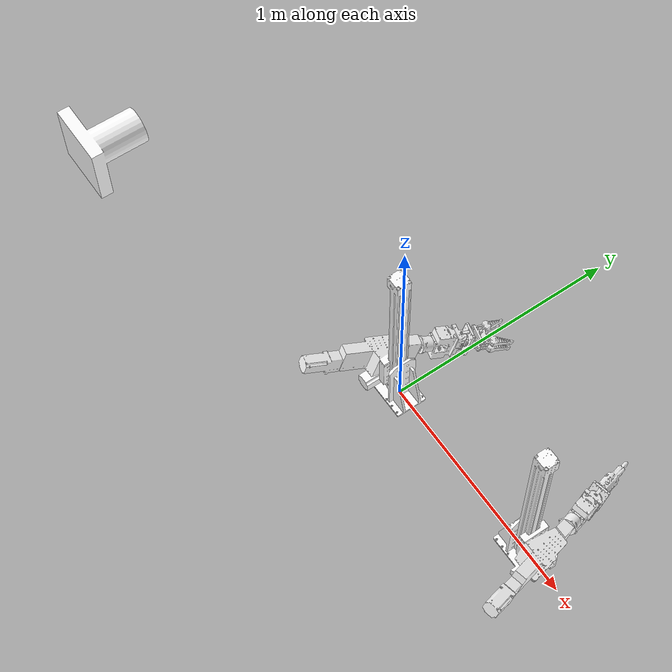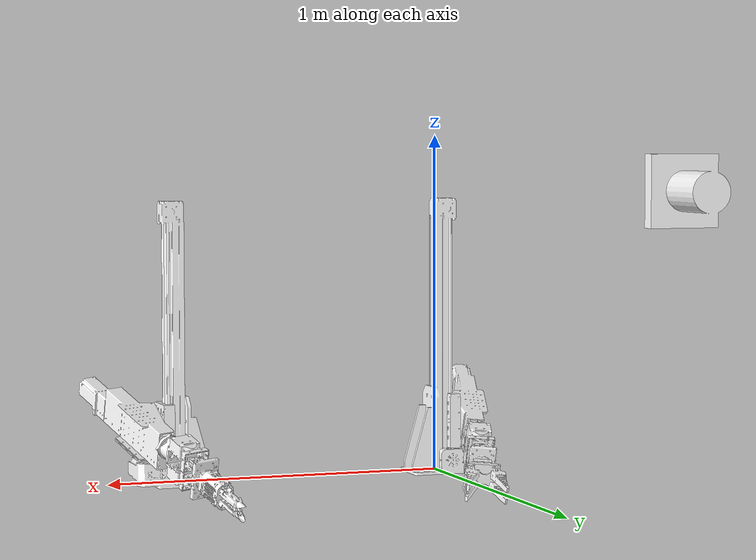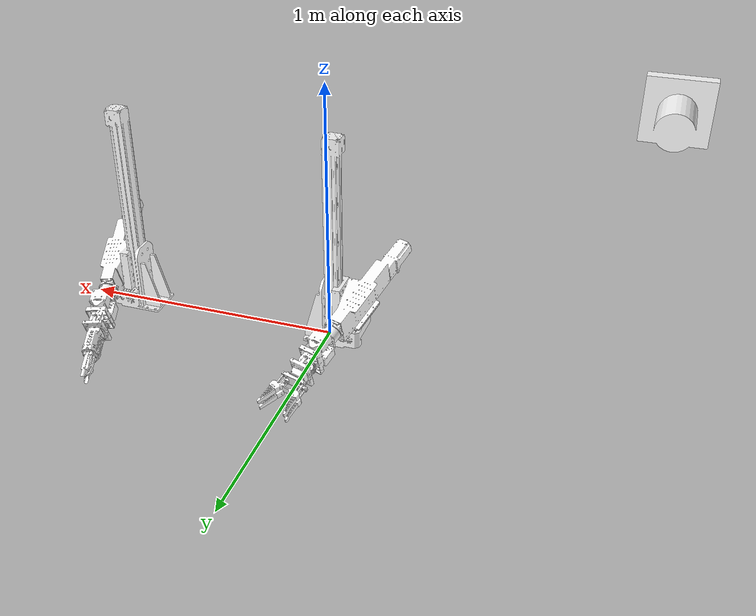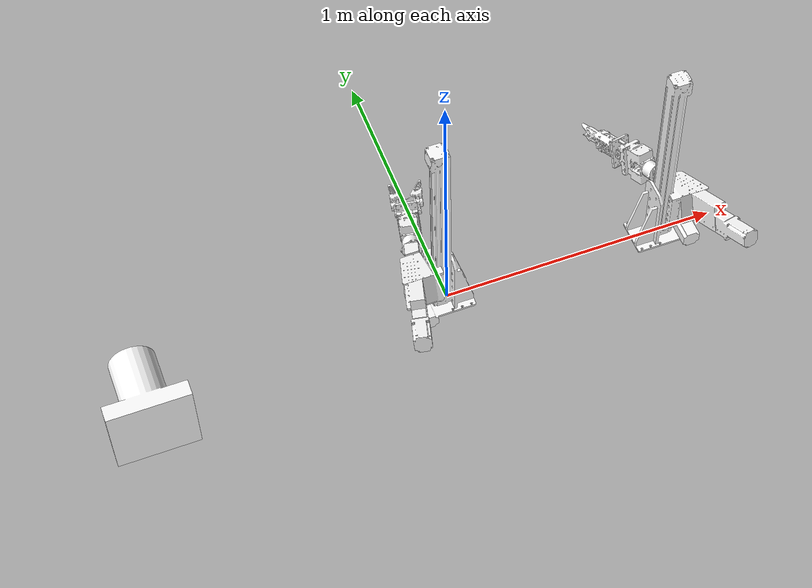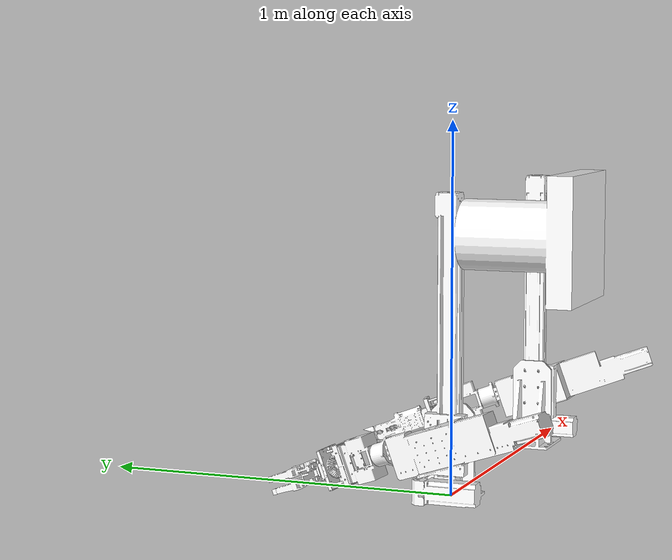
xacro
<?xml version="1.0"?>
<robot xmlns:xacro="http://www.ros.org/wiki/xacro" name="double_arm_robot">
    <xacro:arg name="initial_positions_file" default="initial_positions.yaml" />
    <xacro:arg name="hardware_mode" default="dry_run" />
    <xacro:arg name="transport_type" default="direct_motor" />
    <xacro:arg name="test_arm" default="none" />
    <xacro:arg name="e3_safe_hold" default="false" />
    <xacro:arg name="e3_preview_only" default="false" />
    <xacro:arg name="e4_home" default="false" />
    <xacro:arg name="e4_left_joints" default="" />
    <xacro:arg name="e4_right_joints" default="" />
    <xacro:arg name="e4_left_order" default="1" />
    <xacro:arg name="e4_right_order" default="1" />
    <xacro:arg name="e4_step_rad" default="0.01" />
    <xacro:arg name="e4_tol_rad" default="0.005" />
    <xacro:arg name="e4_timeout_ms" default="60000" />
    <xacro:arg name="e4_hold_cycles" default="20" />
    <xacro:arg name="e4_static_hold_cycles" default="50" />
    <xacro:arg name="e4_max_error_rad" default="0.05" />
    <xacro:arg name="stm32_device" default="/dev/serial/by-path/pci-0000:06:00.3-usb-0:2.2.2:1.0-port0" />
    <xacro:arg name="stm32_baud_rate" default="115200" />
    <xacro:arg name="stm32_target_ack_timeout_ms" default="200" />
    <xacro:arg name="stm32_state_timeout_ms" default="200" />
    <xacro:arg name="stm32_control_ack_timeout_ms" default="10000" />
    <xacro:arg name="stm32_state_poll_hz" default="20.0" />
    <xacro:arg name="stm32_state_stale_ms" default="1000" />
    <xacro:arg name="stm32_activate_timeout_ms" default="10000" />
    <xacro:arg name="stm32_zero_offsets" default="0,0,0,0,0,0,0,0,0,0,0,0" />
    <xacro:arg name="stm32_joint_directions" default="1,1,1,1,1,1,1,1,1,1,1,1" />
    <xacro:arg name="stm32_read_only" default="true" />
    <xacro:arg name="allow_motor_enable" default="false" />

    <!-- Import double_arm_robot urdf file -->
    <xacro:include filename="$(find double_arm_robot)/urdf/Double_arm_robot.urdf" />

    <!-- Import control_xacro -->
    <xacro:include filename="double_arm_robot.ros2_control.xacro" />

    <xacro:double_arm_robot_ros2_control
      initial_positions_file="$(arg initial_positions_file)"
      hardware_mode="$(arg hardware_mode)"
      transport_type="$(arg transport_type)"
      test_arm="$(arg test_arm)"
      e3_safe_hold="$(arg e3_safe_hold)"
      e3_preview_only="$(arg e3_preview_only)"
      e4_home="$(arg e4_home)"
      e4_left_joints="$(arg e4_left_joints)"
      e4_right_joints="$(arg e4_right_joints)"
      e4_left_order="$(arg e4_left_order)"
      e4_right_order="$(arg e4_right_order)"
      e4_step_rad="$(arg e4_step_rad)"
      e4_tol_rad="$(arg e4_tol_rad)"
      e4_timeout_ms="$(arg e4_timeout_ms)"
      e4_hold_cycles="$(arg e4_hold_cycles)"
      e4_static_hold_cycles="$(arg e4_static_hold_cycles)"
      e4_max_error_rad="$(arg e4_max_error_rad)"
      stm32_device="$(arg stm32_device)"
      stm32_baud_rate="$(arg stm32_baud_rate)"
      stm32_target_ack_timeout_ms="$(arg stm32_target_ack_timeout_ms)"
      stm32_state_timeout_ms="$(arg stm32_state_timeout_ms)"
      stm32_control_ack_timeout_ms="$(arg stm32_control_ack_timeout_ms)"
      stm32_state_poll_hz="$(arg stm32_state_poll_hz)"
      stm32_state_stale_ms="$(arg stm32_state_stale_ms)"
      stm32_activate_timeout_ms="$(arg stm32_activate_timeout_ms)"
      stm32_zero_offsets="$(arg stm32_zero_offsets)"
      stm32_joint_directions="$(arg stm32_joint_directions)"
      stm32_read_only="$(arg stm32_read_only)"
      allow_motor_enable="$(arg allow_motor_enable)"/>

</robot>

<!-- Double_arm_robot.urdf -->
<robot
  name="double_arm_robot">
  <link
    name="base_link">
    <inertial>
      <origin
        xyz="0.39112 -0.004586 -0.30234"
        rpy="0 0 0" />
      <mass
        value="57.511" />
      <inertia
        ixx="0.61783"
        ixy="9.8505E-05"
        ixz="-5.1567E-07"
        iyy="1.5192"
        iyz="-0.00061905"
        izz="1.484" />
    </inertial>
    <visual>
      <origin
        xyz="0 0 0"
        rpy="0 0 0" />
      <geometry>
        <mesh
          filename="package://double_arm_robot/meshes/base_link.STL" />
      </geometry>
      <material
        name="">
        <color
          rgba="1 1 1 1" />
      </material>
    </visual>
    <collision>
      <origin
        xyz="0 0 0"
        rpy="0 0 0" />
      <geometry>
        <mesh
          filename="package://double_arm_robot/meshes/base_link.STL" />
      </geometry>
    </collision>
  </link>
  <link
    name="L_Link_1">
    <inertial>
      <origin
        xyz="-0.024771 -0.0043237 0.28739"
        rpy="0 0 0" />
      <mass
        value="3.1457" />
      <inertia
        ixx="0.067494"
        ixy="-2.2004E-06"
        ixz="6.2878E-05"
        iyy="0.067114"
        iyz="9.2361E-09"
        izz="0.0024915" />
    </inertial>
    <visual>
      <origin
        xyz="0 0 0"
        rpy="0 0 0" />
      <geometry>
        <mesh
          filename="package://double_arm_robot/meshes/L_Link_1.STL" />
      </geometry>
      <material
        name="">
        <color
          rgba="1 1 1 1" />
      </material>
    </visual>
    <collision>
      <origin
        xyz="0 0 0"
        rpy="0 0 0" />
      <geometry>
        <mesh
          filename="package://double_arm_robot/meshes/L_Link_1.STL" />
      </geometry>
    </collision>
  </link>

  <joint
    name="L_Joint_1"
    type="prismatic">
    <origin
      xyz="0 0 0"
      rpy="0 0 0" />
    <parent
      link="base_link" />
    <child
      link="L_Link_1" />
    <axis
      xyz="1 0 0" />
    <limit
      lower="0"
      upper="0.28"
      effort="0"
      velocity="0" />
  </joint>
  <link
    name="L_Link_2">
    <inertial>
      <origin
        xyz="-0.067025 -0.078651 0.101"
        rpy="0 0 0" />
      <mass
        value="1.5139" />
      <inertia
        ixx="0.0054325"
        ixy="-0.00072379"
        ixz="0.0002593"
        iyy="0.0024927"
        iyz="0.0007735"
        izz="0.0041891" />
    </inertial>
    <visual>
      <origin
        xyz="0 0 0"
        rpy="0 0 0" />
      <geometry>
        <mesh
          filename="package://double_arm_robot/meshes/L_Link_2.STL" />
      </geometry>
      <material
        name="">
        <color
          rgba="1 1 1 1" />
      </material>
    </visual>
    <collision>
      <origin
        xyz="0 0 0"
        rpy="0 0 0" />
      <geometry>
        <mesh
          filename="package://double_arm_robot/meshes/L_Link_2.STL" />
      </geometry>
    </collision>
  </link>

  <joint
    name="L_Joint_2"
    type="prismatic">
    <origin
      xyz="-0.04907 -4.0933E-05 0.06775"
      rpy="0 0 0" />
    <parent
      link="L_Link_1" />
    <child
      link="L_Link_2" />
    <axis
      xyz="0 0 -1" />
    <limit
      lower="-0.5"
      upper="0.05"
      effort="0"
      velocity="0" />
  </joint>

  <link
    name="L_Link_3">
    <inertial>
      <origin
        xyz="-5.6684E-05 0.26922 0.00033286"
        rpy="0 0 0" />
      <mass
        value="0.29852" />
      <inertia
        ixx="0.0013422"
        ixy="-8.2507E-08"
        ixz="3.3034E-07"
        iyy="9.1593E-05"
        iyz="7.0197E-07"
        izz="0.0013466" />
    </inertial>
    <visual>
      <origin
        xyz="0 0 0"
        rpy="0 0 0" />
      <geometry>
        <mesh
          filename="package://double_arm_robot/meshes/L_Link_3.STL" />
      </geometry>
      <material
        name="">
        <color
          rgba="1 1 1 1" />
      </material>
    </visual>
    <collision>
      <origin
        xyz="0 0 0"
        rpy="0 0 0" />
      <geometry>
        <mesh
          filename="package://double_arm_robot/meshes/L_Link_3.STL" />
      </geometry>
    </collision>
  </link>

  <joint
    name="L_Joint_3"
    type="prismatic">
    <origin
      xyz="-0.11137 -0.16079 0.16664"
      rpy="-0.33807 -0.088637 -0.24666" />
    <parent
      link="L_Link_2" />
    <child
      link="L_Link_3" />
    <axis
      xyz="0 1 0" />
    <limit
      lower="-0.01"
      upper="0.25"
      effort="0"
      velocity="0" />
  </joint>

  <link
    name="L_Link_4">
    <inertial>
      <origin
        xyz="1.6778E-06 0.064046 2.4249E-05"
        rpy="0 0 0" />
      <mass
        value="0.24856" />
      <inertia
        ixx="0.00012628"
        ixy="-3.9951E-10"
        ixz="9.3763E-08"
        iyy="0.00014245"
        iyz="-9.2122E-09"
        izz="0.00019433" />
    </inertial>
    <visual>
      <origin
        xyz="0 0 0"
        rpy="0 0 0" />
      <geometry>
        <mesh
          filename="package://double_arm_robot/meshes/L_Link_4.STL" />
      </geometry>
      <material
        name="">
        <color
          rgba="1 1 1 1" />
      </material>
    </visual>
    <collision>
      <origin
        xyz="0 0 0"
        rpy="0 0 0" />
      <geometry>
        <mesh
          filename="package://double_arm_robot/meshes/L_Link_4.STL" />
      </geometry>
    </collision>
  </link>

  <joint
    name="L_Joint_4"
    type="revolute">
    <origin
      xyz="0 0.38477 0.00041604"
      rpy="0 0 0" />
    <parent
      link="L_Link_3" />
    <child
      link="L_Link_4" />
    <axis
      xyz="0 1 0" />
    <limit
      lower="-2.3562"
      upper="2.3562"
      effort="0"
      velocity="0" />
  </joint>

  <link
    name="L_Link_5">
    <inertial>
      <origin
        xyz="0.00049424 0.031226 -0.045011"
        rpy="0 0 0" />
      <mass
        value="0.058132" />
      <inertia
        ixx="5.4412E-05"
        ixy="8.3931E-13"
        ixz="-1.3302E-10"
        iyy="8.4403E-05"
        iyz="-4.8478E-09"
        izz="3.265E-05" />
    </inertial>
    <visual>
      <origin
        xyz="0 0 0"
        rpy="0 0 0" />
      <geometry>
        <mesh
          filename="package://double_arm_robot/meshes/L_Link_5.STL" />
      </geometry>
      <material
        name="">
        <color
          rgba="1 1 1 1" />
      </material>
    </visual>
    <collision>
      <origin
        xyz="0 0 0"
        rpy="0 0 0" />
      <geometry>
        <mesh
          filename="package://double_arm_robot/meshes/L_Link_5.STL" />
      </geometry>
    </collision>
  </link>

  <joint
    name="L_Joint_5"
    type="revolute">
    <origin
      xyz="-0.00073394 0.12758 0.045"
      rpy="0 0 0" />
    <parent
      link="L_Link_4" />
    <child
      link="L_Link_5" />
    <axis
      xyz="0 0 -1" />
    <limit
      lower="-1.57"
      upper="1.57"
      effort="0"
      velocity="0" />
  </joint>

  <link
    name="L_Link_6">
    <inertial>
      <origin
        xyz="1.8034E-07 0.056195 5.7197E-05"
        rpy="0 0 0" />
      <mass
        value="0.28245" />
      <inertia
        ixx="8.7418E-05"
        ixy="1.8572E-11"
        ixz="1.0663E-08"
        iyy="0.00010574"
        iyz="3.9999E-08"
        izz="0.00011382" />
    </inertial>
    <visual>
      <origin
        xyz="0 0 0"
        rpy="0 0 0" />
      <geometry>
        <mesh
          filename="package://double_arm_robot/meshes/L_Link_6.STL" />
      </geometry>
      <material
        name="">
        <color
          rgba="1 1 1 1" />
      </material>
    </visual>
    <collision>
      <origin
        xyz="0 0 0"
        rpy="0 0 0" />
      <geometry>
        <mesh
          filename="package://double_arm_robot/meshes/L_Link_6.STL" />
      </geometry>
    </collision>
  </link>

  <joint
    name="L_Joint_6"
    type="revolute">
    <origin
      xyz="0.00073394 0.040168 -0.045"
      rpy="0 0 0" />
    <parent
      link="L_Link_5" />
    <child
      link="L_Link_6" />
    <axis
      xyz="0 -1 0" />
    <limit
      lower="-2.3562"
      upper="2.3562"
      effort="0"
      velocity="0" />
  </joint>

  <link
    name="R_Link_1">
    <inertial>
      <origin
        xyz="0.024771 -0.0042446 0.28739"
        rpy="0 0 0" />
      <mass
        value="3.1457" />
      <inertia
        ixx="0.067494"
        ixy="2.2064E-06"
        ixz="-6.2878E-05"
        iyy="0.067114"
        iyz="2.248E-08"
        izz="0.0024915" />
    </inertial>
    <visual>
      <origin
        xyz="0 0 0"
        rpy="0 0 0" />
      <geometry>
        <mesh
          filename="package://double_arm_robot/meshes/R_Link_1.STL" />
      </geometry>
      <material
        name="">
        <color
          rgba="1 1 1 1" />
      </material>
    </visual>
    <collision>
      <origin
        xyz="0 0 0"
        rpy="0 0 0" />
      <geometry>
        <mesh
          filename="package://double_arm_robot/meshes/R_Link_1.STL" />
      </geometry>
    </collision>
  </link>

  <joint
    name="R_Joint_1"
    type="prismatic">
    <origin
      xyz="0.78482 -8.1869E-05 0"
      rpy="0 0 0" />
    <parent
      link="base_link" />
    <child
      link="R_Link_1" />
    <axis
      xyz="1 0 0" />
    <limit
      lower="-0.31"
      upper="0.01"
      effort="0"
      velocity="0" />
  </joint>

  <link
    name="R_Link_2">
    <inertial>
      <origin
        xyz="0.067023 -0.078652 0.101"
        rpy="0 0 0" />
      <mass
        value="1.5139" />
      <inertia
        ixx="0.0054325"
        ixy="0.00072377"
        ixz="-0.00025932"
        iyy="0.0024927"
        iyz="0.0007735"
        izz="0.0041891" />
    </inertial>
    <visual>
      <origin
        xyz="0 0 0"
        rpy="0 0 0" />
      <geometry>
        <mesh
          filename="package://double_arm_robot/meshes/R_Link_2.STL" />
      </geometry>
      <material
        name="">
        <color
          rgba="1 1 1 1" />
      </material>
    </visual>
    <collision>
      <origin
        xyz="0 0 0"
        rpy="0 0 0" />
      <geometry>
        <mesh
          filename="package://double_arm_robot/meshes/R_Link_2.STL" />
      </geometry>
    </collision>
  </link>

  <joint
    name="R_Joint_2"
    type="prismatic">
    <origin
      xyz="0.04907 4.0935E-05 0.06775"
      rpy="0 0 0" />
    <parent
      link="R_Link_1" />
    <child
      link="R_Link_2" />
    <axis
      xyz="0 0 -1" />
    <limit
      lower="-0.5"
      upper="0.05"
      effort="0"
      velocity="0" />
  </joint>

  <link
    name="R_Link_3">
    <inertial>
      <origin
        xyz="-5.6684E-05 0.26922 0.00033286"
        rpy="0 0 0" />
      <mass
        value="0.29852" />
      <inertia
        ixx="0.0013422"
        ixy="-8.2507E-08"
        ixz="3.3034E-07"
        iyy="9.1593E-05"
        iyz="7.0197E-07"
        izz="0.0013466" />
    </inertial>
    <visual>
      <origin
        xyz="0 0 0"
        rpy="0 0 0" />
      <geometry>
        <mesh
          filename="package://double_arm_robot/meshes/R_Link_3.STL" />
      </geometry>
      <material
        name="">
        <color
          rgba="1 1 1 1" />
      </material>
    </visual>
    <collision>
      <origin
        xyz="0 0 0"
        rpy="0 0 0" />
      <geometry>
        <mesh
          filename="package://double_arm_robot/meshes/R_Link_3.STL" />
      </geometry>
    </collision>
  </link>

  <joint
    name="R_Joint_3"
    type="prismatic">
    <origin
      xyz="0.11137 -0.16079 0.16664"
      rpy="-0.33807 0.088637 0.24666" />
    <parent
      link="R_Link_2" />
    <child
      link="R_Link_3" />
    <axis
      xyz="0 -1 0" />
    <limit
      lower="-0.25"
      upper="0.01"
      effort="0"
      velocity="0" />
  </joint>

  <link
    name="R_Link_4">
    <inertial>
      <origin
        xyz="1.6772E-06 0.064046 2.425E-05"
        rpy="0 0 0" />
      <mass
        value="0.24856" />
      <inertia
        ixx="0.00012628"
        ixy="-4.1672E-10"
        ixz="9.3775E-08"
        iyy="0.00014245"
        iyz="-9.2221E-09"
        izz="0.00019433" />
    </inertial>
    <visual>
      <origin
        xyz="0 0 0"
        rpy="0 0 0" />
      <geometry>
        <mesh
          filename="package://double_arm_robot/meshes/R_Link_4.STL" />
      </geometry>
      <material
        name="">
        <color
          rgba="1 1 1 1" />
      </material>
    </visual>
    <collision>
      <origin
        xyz="0 0 0"
        rpy="0 0 0" />
      <geometry>
        <mesh
          filename="package://double_arm_robot/meshes/R_Link_4.STL" />
      </geometry>
    </collision>
  </link>

  <joint
    name="R_Joint_4"
    type="revolute">
    <origin
      xyz="0 0.38477 0.00041604"
      rpy="0 0 0" />
    <parent
      link="R_Link_3" />
    <child
      link="R_Link_4" />
    <axis
      xyz="0 1 0" />
    <limit
      lower="-2.3562"
      upper="2.3562"
      effort="0"
      velocity="0" />
  </joint>

  <link
    name="R_Link_5">
    <inertial>
      <origin
        xyz="-0.0002397 0.033058 -0.046211"
        rpy="0 0 0" />
      <mass
        value="0.058132" />
      <inertia
        ixx="5.4412E-05"
        ixy="4.8396E-13"
        ixz="-1.3289E-10"
        iyy="8.4403E-05"
        iyz="-4.8477E-09"
        izz="3.265E-05" />
    </inertial>
    <visual>
      <origin
        xyz="0 0 0"
        rpy="0 0 0" />
      <geometry>
        <mesh
          filename="package://double_arm_robot/meshes/R_Link_5.STL" />
      </geometry>
      <material
        name="">
        <color
          rgba="1 1 1 1" />
      </material>
    </visual>
    <collision>
      <origin
        xyz="0 0 0"
        rpy="0 0 0" />
      <geometry>
        <mesh
          filename="package://double_arm_robot/meshes/R_Link_5.STL" />
      </geometry>
    </collision>
  </link>

  <joint
    name="R_Joint_5"
    type="revolute">
    <origin
      xyz="0 0.12575 0.0462"
      rpy="0 0 0" />
    <parent
      link="R_Link_4" />
    <child
      link="R_Link_5" />
    <axis
      xyz="0 0 1" />
    <limit
      lower="-1.57"
      upper="1.57"
      effort="0"
      velocity="0" />
  </joint>

  <link
    name="R_Link_6">
    <inertial>
      <origin
        xyz="2.3467E-05 0.053535 -0.00013448"
        rpy="0 0 0" />
      <mass
        value="0.20529" />
      <inertia
        ixx="0.00011254"
        ixy="2.7138E-08"
        ixz="6.6416E-06"
        iyy="8.4812E-05"
        iyz="-6.1301E-11"
        izz="8.4031E-05" />
    </inertial>
    <visual>
      <origin
        xyz="0 0 0"
        rpy="0 0 0" />
      <geometry>
        <mesh
          filename="package://double_arm_robot/meshes/R_Link_6.STL" />
      </geometry>
      <material
        name="">
        <color
          rgba="1 1 1 1" />
      </material>
    </visual>
    <collision>
      <origin
        xyz="0 0 0"
        rpy="0 0 0" />
      <geometry>
        <mesh
          filename="package://double_arm_robot/meshes/R_Link_6.STL" />
      </geometry>
    </collision>
  </link>

  <joint
    name="R_Joint_6"
    type="revolute">
    <origin
      xyz="0 0.042 -0.0462"
      rpy="0 0 0" />
    <parent
      link="R_Link_5" />
    <child
      link="R_Link_6" />
    <axis
      xyz="0 -1 0" />
    <limit
      lower="-2.3562"
      upper="2.3562"
      effort="0"
      velocity="0" />
  </joint>
</robot>

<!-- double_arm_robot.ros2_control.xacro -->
<robot xmlns:xacro="http://www.ros.org/wiki/xacro">

  <xacro:macro name="double_arm_robot_ros2_control"
               params="initial_positions_file
                       hardware_mode:=dry_run
                       transport_type:=direct_motor
                       test_arm:=none
                       e3_safe_hold:=false
                       e3_preview_only:=false
                       e4_home:=false
                       e4_left_joints:=''
                       e4_right_joints:=''
                       e4_left_order:=1
                       e4_right_order:=1
                       e4_step_rad:=0.01
                       e4_tol_rad:=0.005
                       e4_timeout_ms:=60000
                       e4_hold_cycles:=20
                       e4_static_hold_cycles:=50
                       e4_max_error_rad:=0.05
                       stm32_device:='/dev/serial/by-path/pci-0000:06:00.3-usb-0:2.2.2:1.0-port0'
                       stm32_baud_rate:=115200
                       stm32_target_ack_timeout_ms:=200
                       stm32_state_timeout_ms:=200
                       stm32_control_ack_timeout_ms:=10000
                       stm32_state_poll_hz:=20.0
                       stm32_state_stale_ms:=1000
                       stm32_activate_timeout_ms:=10000
                       stm32_zero_offsets:='0,0,0,0,0,0,0,0,0,0,0,0'
                       stm32_joint_directions:='1,1,1,1,1,1,1,1,1,1,1,1'
                       stm32_read_only:=true
                       allow_motor_enable:=false">

    <xacro:property name="init_pos"
      value="${xacro.load_yaml(initial_positions_file)['initial_positions']}"/>

    <!-- ── FAKE mode ──────────────────────────────────────────── -->
    <xacro:if value="${hardware_mode == 'fake'}">
      <ros2_control name="FakeSystem" type="system">
        <hardware>
          <plugin>mock_components/GenericSystem</plugin>
        </hardware>
        <xacro:macro name="fake_j" params="j init_v">
          <joint name="${j}">
            <command_interface name="position"/>
            <state_interface name="position">
              <param name="initial_value">${init_v}</param>
            </state_interface>
            <state_interface name="velocity"/>
          </joint>
        </xacro:macro>
        <xacro:fake_j j="L_Joint_1" init_v="${init_pos['L_Joint_1']}"/>
        <xacro:fake_j j="L_Joint_2" init_v="${init_pos['L_Joint_2']}"/>
        <xacro:fake_j j="L_Joint_3" init_v="${init_pos['L_Joint_3']}"/>
        <xacro:fake_j j="L_Joint_4" init_v="${init_pos['L_Joint_4']}"/>
        <xacro:fake_j j="L_Joint_5" init_v="${init_pos['L_Joint_5']}"/>
        <xacro:fake_j j="L_Joint_6" init_v="${init_pos['L_Joint_6']}"/>
        <xacro:fake_j j="R_Joint_1" init_v="${init_pos['R_Joint_1']}"/>
        <xacro:fake_j j="R_Joint_2" init_v="${init_pos['R_Joint_2']}"/>
        <xacro:fake_j j="R_Joint_3" init_v="${init_pos['R_Joint_3']}"/>
        <xacro:fake_j j="R_Joint_4" init_v="${init_pos['R_Joint_4']}"/>
        <xacro:fake_j j="R_Joint_5" init_v="${init_pos['R_Joint_5']}"/>
        <xacro:fake_j j="R_Joint_6" init_v="${init_pos['R_Joint_6']}"/>
      </ros2_control>
    </xacro:if>

    <!-- ── DRY_RUN / REAL modes ───────────────────────────────── -->
    <xacro:if value="${hardware_mode != 'fake'}">

      <!-- ── Direct-motor backend: ArmSystemHardware × 2 ──────── -->
      <xacro:if value="${transport_type == 'direct_motor'}">
      <xacro:macro name="arm_hw"
                   params="name side modbus_dev serial_dev slaves motors
                           j1 j2 j3 j4 j5 j6
                           iv1 iv2 iv3 iv4 iv5 iv6
                           test_arm e3_safe_hold e3_preview_only
                           e4_home e4_home_joints
                           e4_arm_order
                           e4_step_rad e4_tol_rad e4_timeout_ms
                           e4_hold_cycles e4_static_hold_cycles
                           e4_max_error_rad">
        <ros2_control name="${name}" type="system">
          <hardware>
            <plugin>double_arm_hardware/ArmSystemHardware</plugin>
            <param name="hardware_mode">${hardware_mode}</param>
            <param name="arm_side">${side}</param>
            <param name="test_arm">${test_arm}</param>
            <param name="e3_safe_hold">${'true' if e3_safe_hold else 'false'}</param>
            <param name="e3_preview_only">${'true' if e3_preview_only else 'false'}</param>
            <param name="e4_home">${'true' if e4_home else 'false'}</param>
            <param name="e4_home_joints">${e4_home_joints}</param>
            <param name="e4_arm_order">${e4_arm_order}</param>
            <param name="e4_step_rad">${e4_step_rad}</param>
            <param name="e4_tol_rad">${e4_tol_rad}</param>
            <param name="e4_timeout_ms">${e4_timeout_ms}</param>
            <param name="e4_hold_cycles">${e4_hold_cycles}</param>
            <param name="e4_static_hold_cycles">${e4_static_hold_cycles}</param>
            <param name="e4_max_error_rad">${e4_max_error_rad}</param>
            <param name="modbus_device">${modbus_dev}</param>
            <param name="serial_device">${serial_dev}</param>
            <param name="modbus_slaves">${slaves}</param>
            <param name="serial_motor_ids">${motors}</param>
            <param name="comm_cycle_ms">50</param>
            <param name="timeout_ms">20</param>
            <param name="error_threshold">5</param>
            <param name="enable_hardware">${'true' if hardware_mode == 'real' else 'false'}</param>
            <param name="allow_hardware_io">${'true' if hardware_mode == 'real' else 'false'}</param>
          </hardware>
          <joint name="${j1}">
            <command_interface name="position"/>
            <state_interface name="position">
              <param name="initial_value">${iv1}</param>
            </state_interface>
          </joint>
          <joint name="${j2}">
            <command_interface name="position"/>
            <state_interface name="position">
              <param name="initial_value">${iv2}</param>
            </state_interface>
          </joint>
          <joint name="${j3}">
            <command_interface name="position"/>
            <state_interface name="position">
              <param name="initial_value">${iv3}</param>
            </state_interface>
          </joint>
          <joint name="${j4}">
            <command_interface name="position"/>
            <state_interface name="position">
              <param name="initial_value">${iv4}</param>
            </state_interface>
          </joint>
          <joint name="${j5}">
            <command_interface name="position"/>
            <state_interface name="position">
              <param name="initial_value">${iv5}</param>
            </state_interface>
          </joint>
          <joint name="${j6}">
            <command_interface name="position"/>
            <state_interface name="position">
              <param name="initial_value">${iv6}</param>
            </state_interface>
          </joint>
        </ros2_control>
      </xacro:macro>

      <xacro:arm_hw name="LeftArm"  side="left"
        modbus_dev="/dev/tcp_l_modbus" serial_dev="/dev/tcp_l_serial"
        slaves="1,2,3" motors="4,5,6"
        j1="L_Joint_1" j2="L_Joint_2" j3="L_Joint_3"
        j4="L_Joint_4" j5="L_Joint_5" j6="L_Joint_6"
        iv1="${init_pos['L_Joint_1']}" iv2="${init_pos['L_Joint_2']}"
        iv3="${init_pos['L_Joint_3']}" iv4="${init_pos['L_Joint_4']}"
        iv5="${init_pos['L_Joint_5']}" iv6="${init_pos['L_Joint_6']}"
        test_arm="${test_arm}" e3_safe_hold="${e3_safe_hold}"
        e3_preview_only="${e3_preview_only}"
        e4_home="${e4_home}" e4_home_joints="${e4_left_joints}"
        e4_arm_order="${e4_left_order}"
        e4_step_rad="${e4_step_rad}" e4_tol_rad="${e4_tol_rad}"
        e4_timeout_ms="${e4_timeout_ms}" e4_hold_cycles="${e4_hold_cycles}"
        e4_static_hold_cycles="${e4_static_hold_cycles}"
        e4_max_error_rad="${e4_max_error_rad}"/>

      <xacro:arm_hw name="RightArm" side="right"
        modbus_dev="/dev/tcp_r_modbus" serial_dev="/dev/tcp_r_serial"
        slaves="1,2,3" motors="4,5,6"
        j1="R_Joint_1" j2="R_Joint_2" j3="R_Joint_3"
        j4="R_Joint_4" j5="R_Joint_5" j6="R_Joint_6"
        iv1="${init_pos['R_Joint_1']}" iv2="${init_pos['R_Joint_2']}"
        iv3="${init_pos['R_Joint_3']}" iv4="${init_pos['R_Joint_4']}"
        iv5="${init_pos['R_Joint_5']}" iv6="${init_pos['R_Joint_6']}"
        test_arm="${test_arm}" e3_safe_hold="${e3_safe_hold}"
        e3_preview_only="${e3_preview_only}"
        e4_home="${e4_home}" e4_home_joints="${e4_right_joints}"
        e4_arm_order="${e4_right_order}"
        e4_step_rad="${e4_step_rad}" e4_tol_rad="${e4_tol_rad}"
        e4_timeout_ms="${e4_timeout_ms}" e4_hold_cycles="${e4_hold_cycles}"
        e4_static_hold_cycles="${e4_static_hold_cycles}"
        e4_max_error_rad="${e4_max_error_rad}"/>
      </xacro:if>

      <!-- ── STM32 backend: single 12-axis instance ───────────── -->
      <xacro:if value="${transport_type == 'stm32'}">
        <ros2_control name="Stm32System" type="system">
          <hardware>
            <plugin>double_arm_hardware/Stm32SystemHardware</plugin>
            <param name="transport_type">stm32</param>
            <param name="stm32_device">${stm32_device}</param>
            <param name="stm32_baud_rate">${stm32_baud_rate}</param>
            <param name="stm32_target_ack_timeout_ms">${stm32_target_ack_timeout_ms}</param>
            <param name="stm32_state_timeout_ms">${stm32_state_timeout_ms}</param>
            <param name="stm32_control_ack_timeout_ms">${stm32_control_ack_timeout_ms}</param>
            <param name="stm32_state_poll_hz">${stm32_state_poll_hz}</param>
            <param name="stm32_state_stale_ms">${stm32_state_stale_ms}</param>
            <param name="stm32_activate_timeout_ms">${stm32_activate_timeout_ms}</param>
            <param name="stm32_zero_offsets">${stm32_zero_offsets}</param>
            <param name="stm32_joint_directions">${stm32_joint_directions}</param>
            <param name="stm32_read_only">${'true' if stm32_read_only else 'false'}</param>
            <param name="allow_motor_enable">${'true' if allow_motor_enable else 'false'}</param>
            <param name="enable_hardware">${'true' if hardware_mode == 'real' else 'false'}</param>
            <param name="allow_hardware_io">${'true' if hardware_mode == 'real' else 'false'}</param>
            <param name="error_threshold">5</param>
          </hardware>
          <xacro:macro name="stm32_j" params="j init_v">
            <joint name="${j}">
              <command_interface name="position"/>
              <state_interface name="position">
                <param name="initial_value">${init_v}</param>
              </state_interface>
            </joint>
          </xacro:macro>
          <xacro:stm32_j j="L_Joint_1" init_v="${init_pos['L_Joint_1']}"/>
          <xacro:stm32_j j="L_Joint_2" init_v="${init_pos['L_Joint_2']}"/>
          <xacro:stm32_j j="L_Joint_3" init_v="${init_pos['L_Joint_3']}"/>
          <xacro:stm32_j j="L_Joint_4" init_v="${init_pos['L_Joint_4']}"/>
          <xacro:stm32_j j="L_Joint_5" init_v="${init_pos['L_Joint_5']}"/>
          <xacro:stm32_j j="L_Joint_6" init_v="${init_pos['L_Joint_6']}"/>
          <xacro:stm32_j j="R_Joint_1" init_v="${init_pos['R_Joint_1']}"/>
          <xacro:stm32_j j="R_Joint_2" init_v="${init_pos['R_Joint_2']}"/>
          <xacro:stm32_j j="R_Joint_3" init_v="${init_pos['R_Joint_3']}"/>
          <xacro:stm32_j j="R_Joint_4" init_v="${init_pos['R_Joint_4']}"/>
          <xacro:stm32_j j="R_Joint_5" init_v="${init_pos['R_Joint_5']}"/>
          <xacro:stm32_j j="R_Joint_6" init_v="${init_pos['R_Joint_6']}"/>
        </ros2_control>
      </xacro:if>

    </xacro:if>

  </xacro:macro>
</robot>
